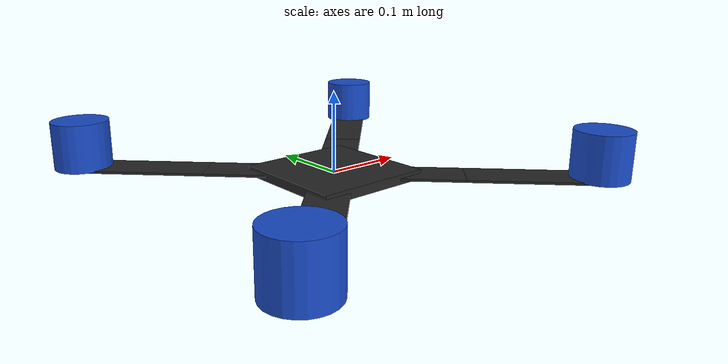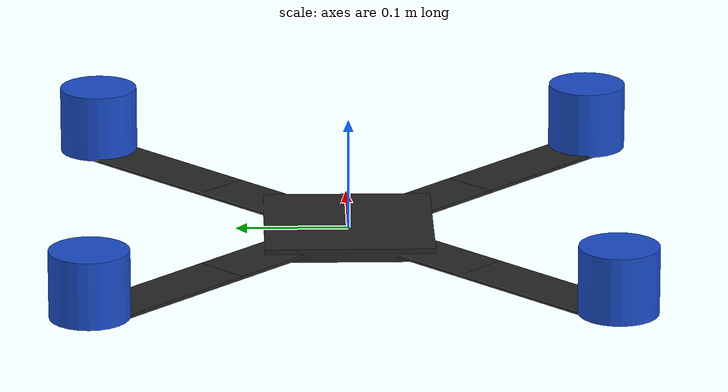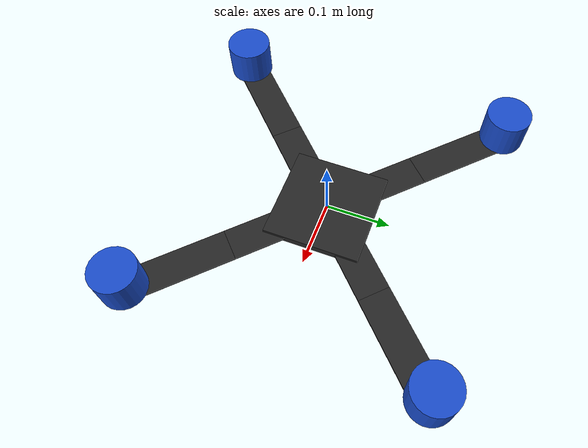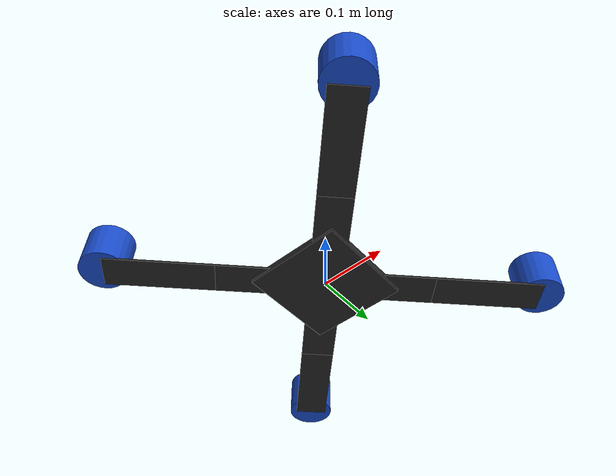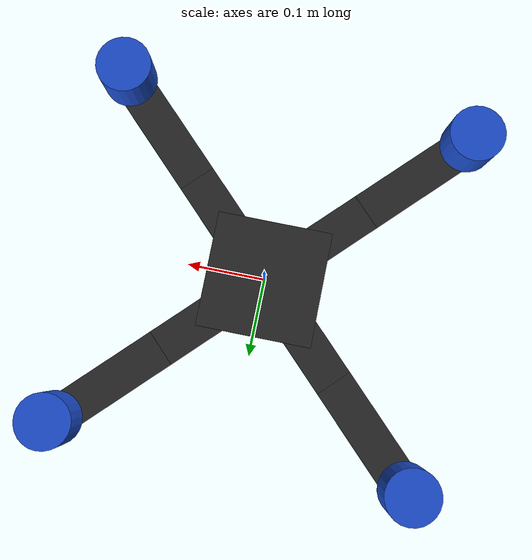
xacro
<?xml version="1.0"?>
<robot xmlns:xacro="http://www.ros.org/wiki/xacro" name="morphing_drone">

  <!-- ==================== PROPERTIES ==================== -->
  <xacro:property name="PI" value="3.14159265359"/>
  <xacro:property name="frame_size" value="0.150"/>      <!-- 150mm center plate -->
  <xacro:property name="frame_thickness" value="0.003"/>  <!-- 3mm carbon fiber -->
  <xacro:property name="arm_inner_len" value="0.159"/>    <!-- center to servo -->
  <xacro:property name="arm_outer_len" value="0.159"/>    <!-- servo to EDF center -->
  <xacro:property name="arm_width" value="0.050"/>
  <xacro:property name="arm_thickness" value="0.003"/>
  <xacro:property name="edf_diameter" value="0.070"/>
  <xacro:property name="edf_height" value="0.060"/>
  <xacro:property name="total_mass" value="2.5"/>
  <xacro:property name="body_mass" value="1.1"/>          <!-- center + electronics -->
  <xacro:property name="arm_inner_mass" value="0.06"/>
  <xacro:property name="arm_outer_mass" value="0.06"/>
  <xacro:property name="edf_mass" value="0.15"/>
  <xacro:property name="servo_mass" value="0.08"/>

  <!-- ==================== MATERIALS ==================== -->
  <material name="carbon_fiber">
    <color rgba="0.15 0.15 0.15 1.0"/>
  </material>
  <material name="silver">
    <color rgba="0.7 0.7 0.7 1.0"/>
  </material>
  <material name="blue">
    <color rgba="0.1 0.3 0.8 1.0"/>
  </material>

  <!-- ==================== BASE LINK (center plate) ==================== -->
  <link name="base_link">
    <visual>
      <geometry>
        <box size="${frame_size} ${frame_size} ${frame_thickness*4}"/>
      </geometry>
      <material name="carbon_fiber"/>
    </visual>
    <collision>
      <geometry>
        <box size="${frame_size} ${frame_size} ${frame_thickness*4}"/>
      </geometry>
    </collision>
    <inertial>
      <mass value="${body_mass}"/>
      <inertia ixx="0.005" ixy="0" ixz="0"
               iyy="0.005" iyz="0" izz="0.009"/>
    </inertial>
  </link>

  <!-- ==================== ARM MACRO ==================== -->
  <xacro:macro name="drone_arm" params="id angle_rad">

    <!-- Inner arm segment (fixed to base, extends to servo point) -->
    <link name="arm_${id}_inner">
      <visual>
        <origin xyz="${arm_inner_len/2} 0 0"/>
        <geometry>
          <box size="${arm_inner_len} ${arm_width} ${arm_thickness}"/>
        </geometry>
        <material name="carbon_fiber"/>
      </visual>
      <collision>
        <origin xyz="${arm_inner_len/2} 0 0"/>
        <geometry>
          <box size="${arm_inner_len} ${arm_width} ${arm_thickness}"/>
        </geometry>
      </collision>
      <inertial>
        <mass value="${arm_inner_mass}"/>
        <origin xyz="${arm_inner_len/2} 0 0"/>
        <inertia ixx="0.00001" ixy="0" ixz="0"
                 iyy="0.0005" iyz="0" izz="0.0005"/>
      </inertial>
    </link>

    <!-- Fixed joint: base_link → inner arm (at the configured heading) -->
    <joint name="arm_${id}_base_joint" type="fixed">
      <parent link="base_link"/>
      <child link="arm_${id}_inner"/>
      <origin xyz="0 0 0" rpy="0 0 ${angle_rad}"/>
    </joint>

    <!-- Servo joint: inner arm → outer arm (REVOLUTE — this is what morphs) -->
    <link name="arm_${id}_outer">
      <visual>
        <origin xyz="${arm_outer_len/2} 0 0"/>
        <geometry>
          <box size="${arm_outer_len} ${arm_width} ${arm_thickness}"/>
        </geometry>
        <material name="carbon_fiber"/>
      </visual>
      <collision>
        <origin xyz="${arm_outer_len/2} 0 0"/>
        <geometry>
          <box size="${arm_outer_len} ${arm_width} ${arm_thickness}"/>
        </geometry>
      </collision>
      <inertial>
        <mass value="${arm_outer_mass + servo_mass}"/>
        <origin xyz="${arm_outer_len/2} 0 0"/>
        <inertia ixx="0.00002" ixy="0" ixz="0"
                 iyy="0.0006" iyz="0" izz="0.0006"/>
      </inertial>
    </link>

    <joint name="servo_joint_${id}" type="revolute">
      <parent link="arm_${id}_inner"/>
      <child link="arm_${id}_outer"/>
      <origin xyz="${arm_inner_len} 0 0" rpy="0 0 0"/>
      <axis xyz="0 0 1"/>       <!-- Rotation about Z (yaw plane) -->
      <limit lower="${-PI/2}" upper="${PI/2}" effort="50.0" velocity="5.24"/>
      <dynamics damping="5.0" friction="2.0"/>
    </joint>

    <!-- EDF unit at end of outer arm -->
    <link name="edf_${id}">
      <visual>
        <geometry>
          <cylinder radius="${edf_diameter/2}" length="${edf_height}"/>
        </geometry>
        <material name="blue"/>
      </visual>
      <collision>
        <geometry>
          <cylinder radius="${edf_diameter/2}" length="${edf_height}"/>
        </geometry>
      </collision>
      <inertial>
        <mass value="${edf_mass}"/>
        <inertia ixx="0.00005" ixy="0" ixz="0"
                 iyy="0.00005" iyz="0" izz="0.00003"/>
      </inertial>
    </link>

    <joint name="edf_mount_${id}" type="fixed">
      <parent link="arm_${id}_outer"/>
      <child link="edf_${id}"/>
      <origin xyz="${arm_outer_len} 0 ${edf_height/2}" rpy="0 0 0"/>
    </joint>

  </xacro:macro>

  <!-- ==================== INSTANTIATE 4 ARMS ==================== -->
  <!-- X-config nominal headings: 45°, 135°, 225°, 315° -->
  <xacro:drone_arm id="1" angle_rad="${PI/4}"/>        <!-- Front-Right -->
  <xacro:drone_arm id="2" angle_rad="${3*PI/4}"/>      <!-- Front-Left  -->
  <xacro:drone_arm id="3" angle_rad="${5*PI/4}"/>      <!-- Rear-Left   -->
  <xacro:drone_arm id="4" angle_rad="${7*PI/4}"/>      <!-- Rear-Right  -->

  <!-- ==================== GAZEBO PLUGINS ==================== -->

  <!-- Ground truth odometry (model plugin) -->
  <gazebo>
    <plugin name="gazebo_ros_p3d" filename="libgazebo_ros_p3d.so">
      <ros>
        <namespace>/morphing_drone</namespace>
        <remapping>odom:=ground_truth/odom</remapping>
      </ros>
      <body_name>base_link</body_name>
      <frame_name>world</frame_name>
      <update_rate>50.0</update_rate>
    </plugin>
  </gazebo>

  <!-- IMU sensor (link-level — needs reference) -->
  <gazebo reference="base_link">
    <sensor name="imu_sensor" type="imu">
      <always_on>true</always_on>
      <update_rate>100</update_rate>
      <plugin name="imu_plugin" filename="libgazebo_ros_imu_sensor.so">
        <ros>
          <namespace>/morphing_drone</namespace>
          <remapping>~/out:=imu/data</remapping>
        </ros>
        <initial_orientation_as_reference>false</initial_orientation_as_reference>
      </plugin>
    </sensor>
    <gravity>true</gravity>
  </gazebo>

  <!-- Force plugin on base_link (model plugin) -->
  <gazebo>
    <plugin name="base_thrust" filename="libgazebo_ros_force.so">
      <ros>
        <namespace>/morphing_drone</namespace>
      </ros>
      <link_name>base_link</link_name>
    </plugin>
  </gazebo>

  <!-- Joint state publisher (model plugin) -->
  <gazebo>
    <plugin name="joint_state_publisher" filename="libgazebo_ros_joint_state_publisher.so">
      <ros>
        <namespace>/morphing_drone</namespace>
        <remapping>joint_states:=joint_states</remapping>
      </ros>
      <joint_name>servo_joint_1</joint_name>
      <joint_name>servo_joint_2</joint_name>
      <joint_name>servo_joint_3</joint_name>
      <joint_name>servo_joint_4</joint_name>
      <update_rate>50</update_rate>
    </plugin>
  </gazebo>

  <!-- Joint position controller (model plugin) -->
  <gazebo>
    <plugin name="joint_pos_controller" filename="libgazebo_ros_joint_pose_trajectory.so">
      <ros>
        <namespace>/morphing_drone</namespace>
      </ros>
      <update_rate>50</update_rate>
    </plugin>
  </gazebo>

</robot>
